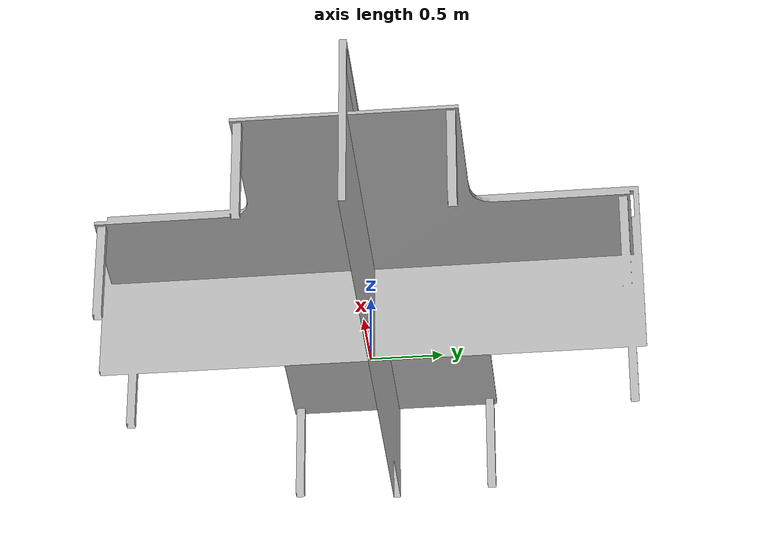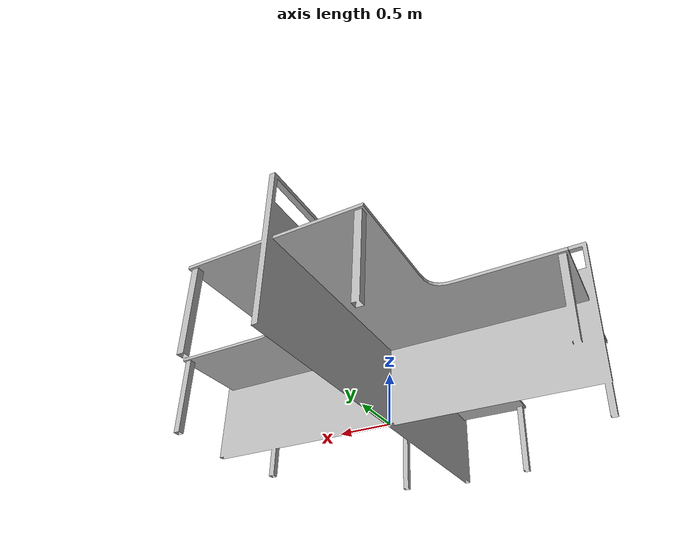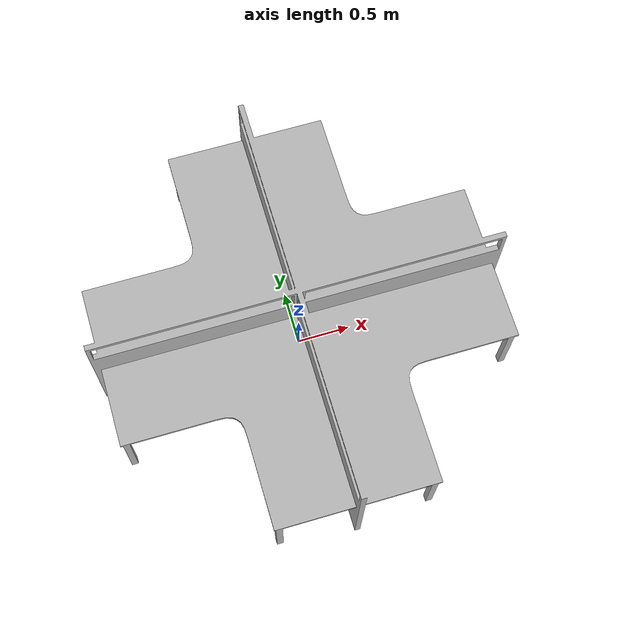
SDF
<?xml version="1.0" ?>
<sdf version="1.5">
  <model name="cubicle_island">
    <static>true</static>
    <link name="link">
      <collision name="collision">
        <geometry>
          <mesh>
            <uri>model://cubicle_island/meshes/cubicle_island.obj</uri>
            <scale>0.01 0.01 0.01</scale>
          </mesh>
        </geometry>
      </collision>
      <visual name="visual">
        <geometry>
          <mesh>
            <uri>model://cubicle_island/meshes/cubicle_island.obj</uri>
            <scale>0.01 0.01 0.01</scale>
          </mesh>
        </geometry>
      </visual>
    </link>
  </model>
</sdf>
